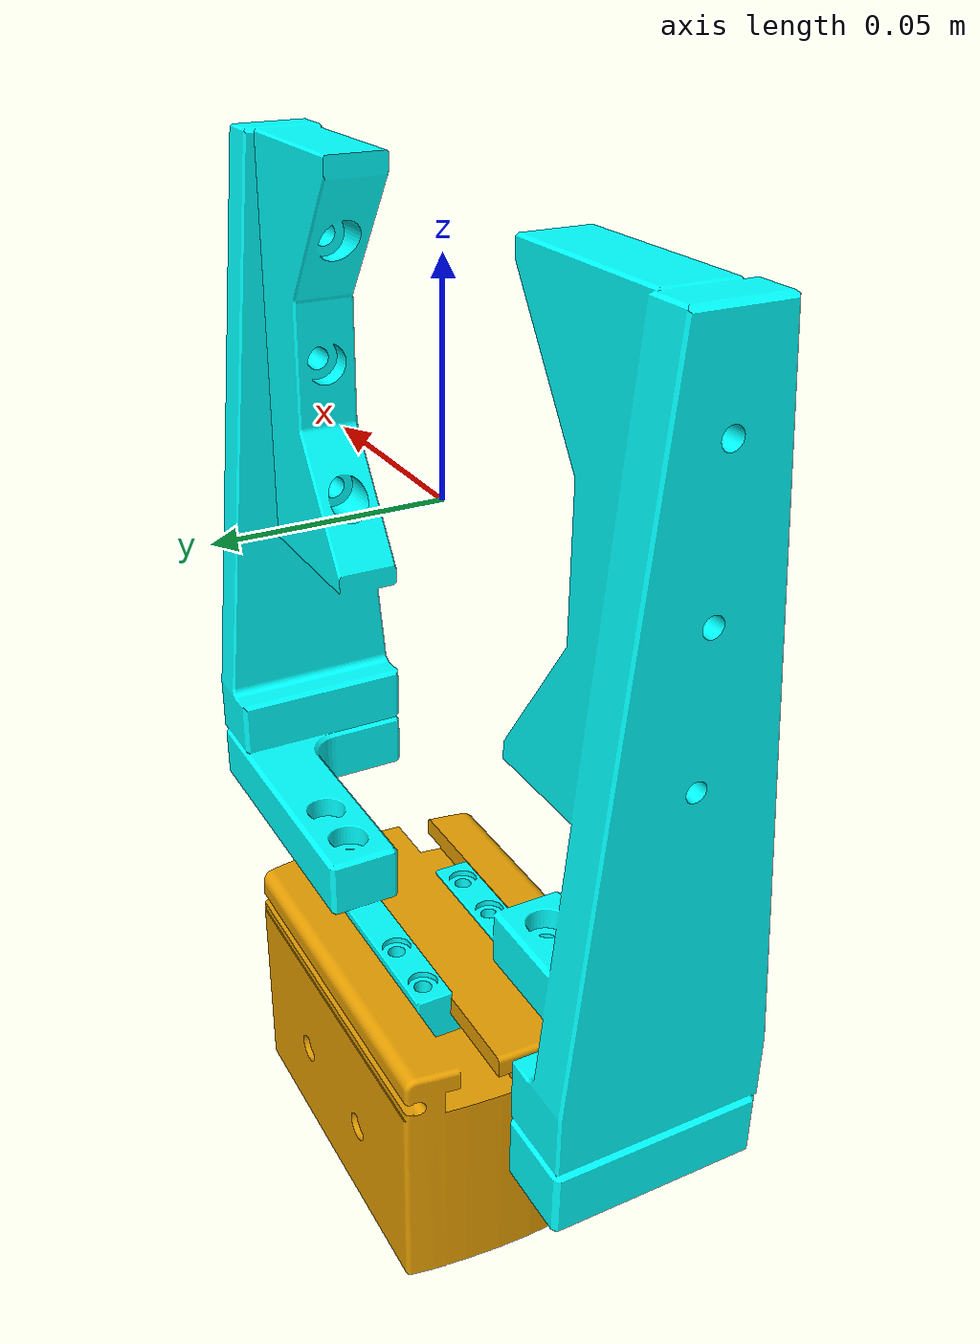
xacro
<?xml version="1.0"?>
<robot xmlns:xacro="http://www.ros.org/wiki/xacro">

<!-- gripper fingers -->
    <link name="gripper_base">
    <visual>
        <origin rpy="1.5708 0 0" xyz="-0.0451 0.031 -0.17376"/>
        <geometry>
            <mesh filename="package://mrm_description/meshes/gripper_base.stl" scale=".001 .001 .001"/>
        </geometry>
    </visual>
    <collision>
        <origin rpy="0 0 0" xyz="0 0 -0.1425"/>
        <geometry>
            <box size="0.091 0.063 0.062"/>
        </geometry>
    </collision>
    <inertial>
        <mass value="0.01"/>
        <origin xyz="0 0 0" rpy="0 0 0"/>
        <inertia ixx="0.0017997696" ixy="0.002937515" ixz="0.00238000234" iyy="0.00296861664" iyz="-0.00330859" izz="0.00283730304" />
    </inertial>
    </link>

    <link name="right_finger">
    <visual>
        <origin rpy="1.5708 0 0" xyz="-0.091 0 0"/>

        <geometry>
            <mesh filename="package://mrm_description/meshes/new_gripper_base.stl" scale=".001 .001 .001"/>
        </geometry>
        <material name="Cyan">
            <color rgba="0 1 1 1"/>
        </material>
    </visual>
    <collision>
        <origin  rpy="1.5708 0 0" xyz="-0.091 0 0"/>
        <geometry>
            <mesh filename="package://mrm_description/meshes/new_gripper_base.stl" scale="0.001 0.001 0.001"/>
        </geometry>
    </collision>
    <inertial>
        <mass value="0.132"/>
        <origin xyz="-0.07461 0.07602 0.04337" rpy="0 0 0"/>
        <inertia ixx="0.449023" ixy="-0.060201" ixz="0.12501" iyy="0.084500" iyz="-0.022897" izz="0.505271" />
    </inertial>
    </link>

    <link name="left_finger">
    <visual>
        <origin rpy="1.5708 0 3.1415926539" xyz="0.0905 0 0"/>
        <geometry>
            <mesh filename="package://mrm_description/meshes/new_gripper_base.stl" scale=".001 .001 .001"/>
        </geometry>
        <material name="Cyan">
            <color rgba="0 1 1 1"/>
        </material>
    </visual>
    <collision>
        <origin rpy="1.5708 0 3.1415926539" xyz="0.0905 0 0"/>
        <geometry>
            <mesh filename="package://mrm_description/meshes/new_gripper_base.stl" scale="0.001 0.001 0.001"/>
        </geometry>
    </collision>
    <inertial>
        <mass value="0.132"/>
        <origin xyz="-0.07461 0.07602 0.04337" rpy="0 0 0"/>
        <inertia ixx="0.449023" ixy="-0.060201" ixz="0.12501" iyy="0.084500" iyz="-0.022897" izz="0.505271" />
    </inertial>
    </link>

<!-- gripper joints -->
    <joint name="gripper_right" type="prismatic">
      <axis xyz="1 0 0" />
      <limit effort="1000.0" lower="-0.02" upper="0.0134" velocity="0.5" />
      <origin rpy="0 0 0" xyz="0 0.0415 -0.12371" />
      <parent link="gripper_base" />
      <child link="right_finger" />
    </joint>

    <joint name="gripper_left" type="prismatic">
      <axis xyz="1 0 0" />
      <limit effort="1000.0" lower="-0.0134" upper="0.02" velocity="0.5" />
      <origin rpy="0 0 0" xyz="0 -0.0415 -0.12371" />
      <parent link="gripper_base" />
      <child link="left_finger" />
    </joint>
</robot>
